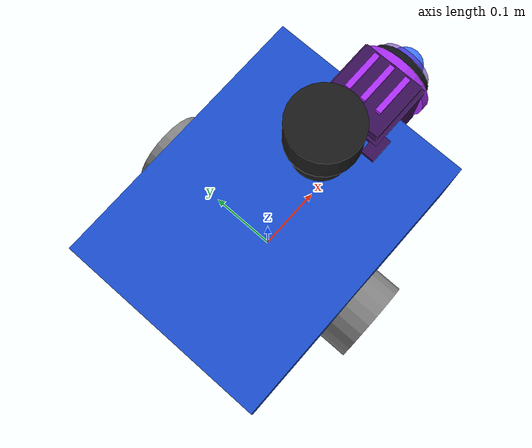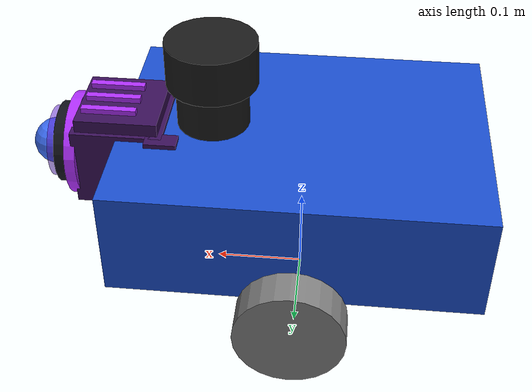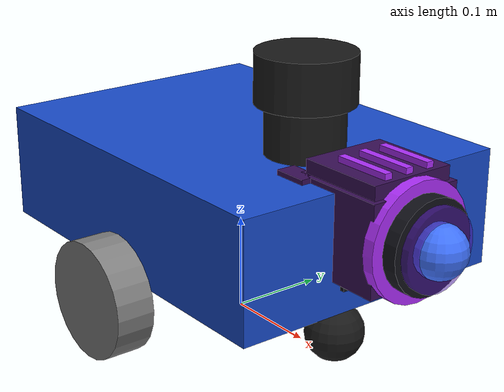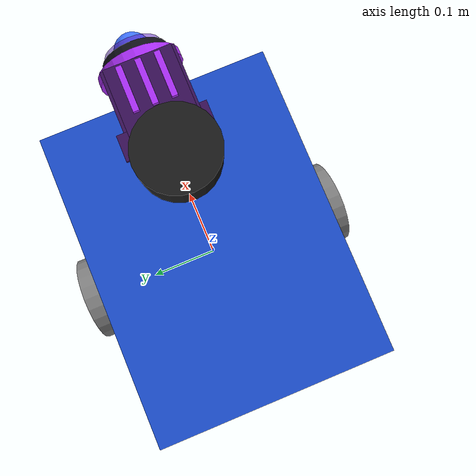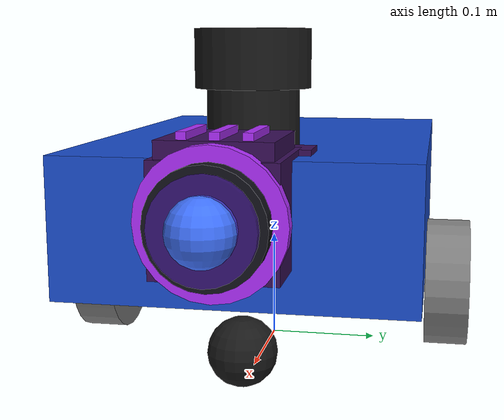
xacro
<?xml version="1.0"?>
<robot name="ros2_robot" xmlns:xacro="http://www.ros.org/wiki/xacro">

  <!-- ===================== 尺寸 / 质量参数 ===================== -->
  <xacro:property name="PI" value="3.14159265359"/>
  <xacro:property name="base_length" value="0.40"/>   <!-- 车长(x) -->
  <xacro:property name="base_width"  value="0.30"/>   <!-- 车宽(y) -->
  <xacro:property name="base_height" value="0.12"/>   <!-- 车高(z) -->
  <xacro:property name="base_mass"   value="4.0"/>
  <!-- 底盘中心离地高度：高于驱动轮半径，保证驱动轮着地、底盘不拖地 -->
  <xacro:property name="base_center_z" value="0.14"/>

  <xacro:property name="wheel_radius"    value="0.06"/>
  <xacro:property name="wheel_width"     value="0.04"/>
  <xacro:property name="wheel_offset_y"  value="0.17"/>   <!-- 两轮半间距 -> 轮距 0.34 -->
  <xacro:property name="wheel_offset_z"  value="0.06"/>
  <xacro:property name="wheel_mass"      value="0.5"/>

  <xacro:property name="caster_radius" value="0.03"/>
  <xacro:property name="caster_mass"   value="0.2"/>

  <xacro:property name="laser_mass" value="0.15"/>

  <material name="grey">   <color rgba="0.5 0.5 0.5 1.0"/></material>
  <material name="dark">   <color rgba="0.1 0.1 0.1 1.0"/></material>
  <material name="blue">   <color rgba="0.1 0.3 0.8 1.0"/></material>
  <material name="red">    <color rgba="0.8 0.1 0.1 1.0"/></material>

  <!-- 科幻摄像头配色 -->
  <material name="purple_metal"><color rgba="0.22 0.06 0.34 1.0"/></material>
  <material name="purple_glow"> <color rgba="0.68 0.18 0.98 1.0"/></material>
  <material name="dark_metal">  <color rgba="0.07 0.07 0.10 1.0"/></material>
  <material name="lens_glass">  <color rgba="0.36 0.12 0.78 0.55"/></material>
  <material name="blue_glow">   <color rgba="0.25 0.45 1.0 1.0"/></material>

  <!-- ===================== 惯性矩阵宏 ===================== -->
  <xacro:macro name="box_inertia" params="m x y z">
    <inertial>
      <mass value="${m}"/>
      <inertia
        ixx="${m*(y*y+z*z)/12.0}" ixy="0.0" ixz="0.0"
        iyy="${m*(x*x+z*z)/12.0}" iyz="0.0"
        izz="${m*(x*x+y*y)/12.0}"/>
    </inertial>
  </xacro:macro>

  <xacro:macro name="cylinder_inertia" params="m r h">
    <inertial>
      <mass value="${m}"/>
      <inertia
        ixx="${m*(3.0*r*r+h*h)/12.0}" ixy="0.0" ixz="0.0"
        iyy="${m*(3.0*r*r+h*h)/12.0}" iyz="0.0"
        izz="${m*r*r/2.0}"/>
    </inertial>
  </xacro:macro>

  <xacro:macro name="sphere_inertia" params="m r">
    <inertial>
      <mass value="${m}"/>
      <inertia
        ixx="${2.0*m*r*r/5.0}" ixy="0.0" ixz="0.0"
        iyy="${2.0*m*r*r/5.0}" iyz="0.0"
        izz="${2.0*m*r*r/5.0}"/>
    </inertial>
  </xacro:macro>

  <!-- ===================== base_link 底盘 ===================== -->
  <link name="base_link">
    <visual>
      <origin xyz="0 0 ${base_center_z}" rpy="0 0 0"/>
      <geometry><box size="${base_length} ${base_width} ${base_height}"/></geometry>
      <material name="blue"/>
    </visual>
    <collision>
      <origin xyz="0 0 ${base_center_z}" rpy="0 0 0"/>
      <geometry><box size="${base_length} ${base_width} ${base_height}"/></geometry>
    </collision>
    <xacro:box_inertia m="${base_mass}" x="${base_length}" y="${base_width}" z="${base_height}"/>
  </link>

  <!-- 雷达安装座（装饰） -->
  <link name="laser_mount_link">
    <visual>
      <origin xyz="0 0 0.03" rpy="0 0 0"/>
      <geometry><cylinder radius="0.04" length="0.06"/></geometry>
      <material name="dark"/>
    </visual>
    <collision>
      <origin xyz="0 0 0.03" rpy="0 0 0"/>
      <geometry><cylinder radius="0.04" length="0.06"/></geometry>
    </collision>
    <xacro:cylinder_inertia m="0.05" r="0.04" h="0.06"/>
  </link>

  <joint name="laser_mount_joint" type="fixed">
    <parent link="base_link"/>
    <child link="laser_mount_link"/>
    <origin xyz="0.10 0 ${base_center_z + base_height/2.0}" rpy="0 0 0"/>
  </joint>

  <!-- 二维激光雷达 -->
  <link name="laser_link">
    <visual>
      <origin xyz="0 0 0" rpy="0 0 0"/>
      <geometry><cylinder radius="0.05" length="0.05"/></geometry>
      <material name="dark"/>
    </visual>
    <collision>
      <origin xyz="0 0 0" rpy="0 0 0"/>
      <geometry><cylinder radius="0.05" length="0.05"/></geometry>
    </collision>
    <xacro:cylinder_inertia m="${laser_mass}" r="0.05" h="0.05"/>
  </link>

  <joint name="laser_joint" type="fixed">
    <parent link="laser_mount_link"/>
    <child link="laser_link"/>
    <origin xyz="0 0 0.075" rpy="0 0 0"/>
  </joint>

  <!-- ===================== 前置科幻摄像头（紫色） =====================
       深紫色金属外壳 + 半透明紫蓝渐变玻璃镜头 + 环形灯带 + 细密机械结构；
       居中安装于车头前方（y=0），镜头朝 +x，水平 180° 超广角。
  -->
  <link name="camera_mount_link">
    <visual>
      <origin xyz="0 0 0" rpy="0 0 0"/>
      <geometry><box size="0.04 0.12 0.02"/></geometry>
      <material name="dark_metal"/>
    </visual>
    <visual>
      <origin xyz="0 0.05 0.03" rpy="0 0 0"/>
      <geometry><box size="0.035 0.02 0.05"/></geometry>
      <material name="purple_metal"/>
    </visual>
    <visual>
      <origin xyz="0 -0.05 0.03" rpy="0 0 0"/>
      <geometry><box size="0.035 0.02 0.05"/></geometry>
      <material name="purple_metal"/>
    </visual>
    <inertial>
      <mass value="0.05"/>
      <inertia ixx="0.00006" ixy="0" ixz="0" iyy="0.00006" iyz="0" izz="0.00006"/>
    </inertial>
  </link>

  <joint name="camera_mount_joint" type="fixed">
    <parent link="base_link"/>
    <child link="camera_mount_link"/>
    <origin xyz="0.15 0 0.15" rpy="0 0 0"/>
  </joint>

  <link name="camera_housing_link">
    <visual>
      <origin xyz="0 0 0" rpy="0 0 0"/>
      <geometry><box size="0.10 0.10 0.09"/></geometry>
      <material name="purple_metal"/>
    </visual>
    <visual>
      <origin xyz="0 0 0.052" rpy="0 0 0"/>
      <geometry><box size="0.09 0.09 0.014"/></geometry>
      <material name="purple_metal"/>
    </visual>
    <visual>
      <origin xyz="-0.02 0 -0.05" rpy="0 0 0"/>
      <geometry><box size="0.05 0.08 0.012"/></geometry>
      <material name="dark_metal"/>
    </visual>
    <visual>
      <origin xyz="0.01 0 0.062" rpy="0 0 0"/>
      <geometry><box size="0.06 0.008 0.006"/></geometry>
      <material name="purple_glow"/>
    </visual>
    <visual>
      <origin xyz="0.01 0.025 0.062" rpy="0 0 0"/>
      <geometry><box size="0.06 0.008 0.006"/></geometry>
      <material name="purple_glow"/>
    </visual>
    <visual>
      <origin xyz="0.01 -0.025 0.062" rpy="0 0 0"/>
      <geometry><box size="0.06 0.008 0.006"/></geometry>
      <material name="purple_glow"/>
    </visual>
    <inertial>
      <mass value="0.12"/>
      <inertia ixx="0.00014" ixy="0" ixz="0" iyy="0.00014" iyz="0" izz="0.0002"/>
    </inertial>
  </link>

  <joint name="camera_body_joint" type="fixed">
    <parent link="camera_mount_link"/>
    <child link="camera_housing_link"/>
    <origin xyz="0.05 0 0.01" rpy="0 0 0"/>
  </joint>

  <link name="camera_ring_link">
    <visual>
      <origin xyz="0 0 0" rpy="0 ${PI/2.0} 0"/>
      <geometry><cylinder radius="0.058" length="0.012"/></geometry>
      <material name="purple_glow"/>
    </visual>
    <inertial>
      <mass value="0.02"/>
      <inertia ixx="0.00002" ixy="0" ixz="0" iyy="0.00002" iyz="0" izz="0.00003"/>
    </inertial>
  </link>

  <joint name="camera_ring_joint" type="fixed">
    <parent link="camera_housing_link"/>
    <child link="camera_ring_link"/>
    <origin xyz="0.052 0 0" rpy="0 0 0"/>
  </joint>

  <link name="camera_barrel_link">
    <visual>
      <origin xyz="0 0 0" rpy="0 ${PI/2.0} 0"/>
      <geometry><cylinder radius="0.046" length="0.03"/></geometry>
      <material name="dark_metal"/>
    </visual>
    <visual>
      <origin xyz="-0.015 0 0" rpy="0 ${PI/2.0} 0"/>
      <geometry><cylinder radius="0.05" length="0.006"/></geometry>
      <material name="purple_metal"/>
    </visual>
    <visual>
      <origin xyz="-0.025 0 0" rpy="0 ${PI/2.0} 0"/>
      <geometry><cylinder radius="0.05" length="0.006"/></geometry>
      <material name="purple_metal"/>
    </visual>
    <inertial>
      <mass value="0.06"/>
      <inertia ixx="0.00003" ixy="0" ixz="0" iyy="0.00003" iyz="0" izz="0.00004"/>
    </inertial>
  </link>

  <joint name="camera_barrel_joint" type="fixed">
    <parent link="camera_housing_link"/>
    <child link="camera_barrel_link"/>
    <origin xyz="0.058 0 0" rpy="0 0 0"/>
  </joint>

  <link name="camera_lens_link">
    <visual>
      <origin xyz="0 0 0" rpy="0 ${PI/2.0} 0"/>
      <geometry><cylinder radius="0.04" length="0.008"/></geometry>
      <material name="lens_glass"/>
    </visual>
    <inertial>
      <mass value="0.02"/>
      <inertia ixx="0.00001" ixy="0" ixz="0" iyy="0.00001" iyz="0" izz="0.00002"/>
    </inertial>
  </link>

  <joint name="camera_lens_joint" type="fixed">
    <parent link="camera_barrel_link"/>
    <child link="camera_lens_link"/>
    <origin xyz="0.02 0 0" rpy="0 0 0"/>
  </joint>

  <link name="camera_lens_core_link">
    <visual>
      <origin xyz="0 0 0" rpy="0 0 0"/>
      <geometry><sphere radius="0.026"/></geometry>
      <material name="blue_glow"/>
    </visual>
    <inertial>
      <mass value="0.01"/>
      <inertia ixx="0.000005" ixy="0" ixz="0" iyy="0.000005" iyz="0" izz="0.000005"/>
    </inertial>
  </link>

  <joint name="camera_lens_core_joint" type="fixed">
    <parent link="camera_lens_link"/>
    <child link="camera_lens_core_link"/>
    <origin xyz="0.003 0 0" rpy="0 0 0"/>
  </joint>

  <link name="camera_optical_frame"/>
  <joint name="camera_optical_joint" type="fixed">
    <parent link="camera_lens_link"/>
    <child link="camera_optical_frame"/>
    <origin xyz="0 0 0" rpy="-${PI/2.0} 0 -${PI/2.0}"/>
  </joint>

  <!-- ===================== 差速驱动轮 ===================== -->
  <xacro:macro name="wheel" params="prefix y">
    <link name="${prefix}_wheel_link">
      <visual>
        <origin xyz="0 0 0" rpy="${PI/2.0} 0 0"/>
        <geometry><cylinder radius="${wheel_radius}" length="${wheel_width}"/></geometry>
        <material name="grey"/>
      </visual>
      <collision>
        <origin xyz="0 0 0" rpy="${PI/2.0} 0 0"/>
        <geometry><cylinder radius="${wheel_radius}" length="${wheel_width}"/></geometry>
      </collision>
      <xacro:cylinder_inertia m="${wheel_mass}" r="${wheel_radius}" h="${wheel_width}"/>
    </link>

    <joint name="${prefix}_wheel_joint" type="continuous">
      <parent link="base_link"/>
      <child link="${prefix}_wheel_link"/>
      <origin xyz="0 ${y} ${wheel_offset_z}" rpy="0 0 0"/>
      <axis xyz="0 1 0"/>
      <dynamics damping="0.05" friction="0.0"/>
    </joint>
  </xacro:macro>

  <xacro:wheel prefix="left"  y="${ wheel_offset_y}"/>
  <xacro:wheel prefix="right" y="${-wheel_offset_y}"/>

  <!-- ===================== 万向支撑轮 ===================== -->
  <link name="caster_link">
    <visual>
      <origin xyz="0 0 0" rpy="0 0 0"/>
      <geometry><sphere radius="${caster_radius}"/></geometry>
      <material name="dark"/>
    </visual>
    <collision>
      <origin xyz="0 0 0" rpy="0 0 0"/>
      <geometry><sphere radius="${caster_radius}"/></geometry>
    </collision>
    <xacro:sphere_inertia m="${caster_mass}" r="${caster_radius}"/>
  </link>

  <joint name="caster_joint" type="fixed">
    <parent link="base_link"/>
    <child link="caster_link"/>
    <origin xyz="-0.15 0 ${caster_radius}" rpy="0 0 0"/>
  </joint>

  <!-- 前万向支撑轮：抵消前置摄像头造成的重心前移，保持车身水平、雷达扫描面正确 -->
  <link name="caster_front_link">
    <visual>
      <origin xyz="0 0 0" rpy="0 0 0"/>
      <geometry><sphere radius="${caster_radius}"/></geometry>
      <material name="dark"/>
    </visual>
    <collision>
      <origin xyz="0 0 0" rpy="0 0 0"/>
      <geometry><sphere radius="${caster_radius}"/></geometry>
    </collision>
    <xacro:sphere_inertia m="${caster_mass}" r="${caster_radius}"/>
  </link>

  <joint name="caster_front_joint" type="fixed">
    <parent link="base_link"/>
    <child link="caster_front_link"/>
    <origin xyz="0.15 0 ${caster_radius}" rpy="0 0 0"/>
  </joint>

  <!-- ===================== Gazebo 物理属性 ===================== -->
  <gazebo reference="base_link">
    <material>Gazebo/Blue</material>
    <mu1>0.2</mu1>
    <mu2>0.2</mu2>
  </gazebo>

  <gazebo reference="left_wheel_link">
    <material>Gazebo/Black</material>
    <mu1>1.0</mu1>
    <mu2>1.0</mu2>
    <kp>1000000.0</kp>
    <kd>1.0</kd>
  </gazebo>

  <gazebo reference="right_wheel_link">
    <material>Gazebo/Black</material>
    <mu1>1.0</mu1>
    <mu2>1.0</mu2>
    <kp>1000000.0</kp>
    <kd>1.0</kd>
  </gazebo>

  <gazebo reference="caster_link">
    <material>Gazebo/Black</material>
    <mu1>0.01</mu1>
    <mu2>0.01</mu2>
    <kp>1000000.0</kp>
    <kd>1.0</kd>
  </gazebo>

  <gazebo reference="caster_front_link">
    <material>Gazebo/Black</material>
    <mu1>0.01</mu1>
    <mu2>0.01</mu2>
    <kp>1000000.0</kp>
    <kd>1.0</kd>
  </gazebo>

  <gazebo reference="laser_link">
    <material>Gazebo/Black</material>
  </gazebo>

  <!-- 摄像头各部件 Gazebo 材质（紫色科幻风：金属外壳/发光灯带/半透明玻璃） -->
  <gazebo reference="camera_mount_link">
    <material>Gazebo/DarkGrey</material>
  </gazebo>
  <gazebo reference="camera_housing_link">
    <material>Gazebo/Indigo</material>
  </gazebo>
  <gazebo reference="camera_ring_link">
    <material>Gazebo/PurpleGlow</material>
  </gazebo>
  <gazebo reference="camera_barrel_link">
    <material>Gazebo/DarkGrey</material>
  </gazebo>
  <gazebo reference="camera_lens_link">
    <material>Gazebo/DarkMagentaTransparent</material>
  </gazebo>
  <gazebo reference="camera_lens_core_link">
    <material>Gazebo/BlueGlow</material>
  </gazebo>

  <!-- ===================== 前置摄像头传感器（水平 180° 超广角） ===================== -->
  <gazebo reference="camera_lens_link">
    <sensor name="front_camera" type="camera">
      <always_on>true</always_on>
      <visualize>true</visualize>
      <update_rate>30</update_rate>
      <pose>0 0 0 0 0 0</pose>
      <camera name="front_camera">
        <horizontal_fov>3.1415</horizontal_fov>
        <image>
          <width>640</width>
          <height>480</height>
          <format>R8G8B8</format>
        </image>
        <clip>
          <near>0.05</near>
          <far>100.0</far>
        </clip>
        <noise>
          <type>gaussian</type>
          <mean>0.0</mean>
          <stddev>0.007</stddev>
        </noise>
      </camera>
      <plugin name="camera_controller" filename="libgazebo_ros_camera.so">
        <ros>
          <namespace>/</namespace>
        </ros>
        <camera_name>camera</camera_name>
        <frame_name>camera_optical_frame</frame_name>
        <hack_baseline>0.07</hack_baseline>
      </plugin>
    </sensor>
  </gazebo>

  <!-- ===================== 差速驱动控制器插件 ===================== -->
  <gazebo>
    <plugin name="diff_drive_controller" filename="libgazebo_ros_diff_drive.so">
      <ros>
        <namespace>/</namespace>
        <remapping>cmd_vel:=cmd_vel</remapping>
        <remapping>odom:=odom</remapping>
      </ros>

      <update_rate>50</update_rate>

      <!-- 关节与轮参数 -->
      <left_joint>left_wheel_joint</left_joint>
      <right_joint>right_wheel_joint</right_joint>
      <wheel_separation>${2.0*wheel_offset_y}</wheel_separation>
      <wheel_diameter>${2.0*wheel_radius}</wheel_diameter>

      <max_wheel_torque>20.0</max_wheel_torque>
      <max_wheel_acceleration>2.0</max_wheel_acceleration>

      <!-- 话题与坐标系（TF: odom -> base_link） -->
      <command_topic>cmd_vel</command_topic>
      <odometry_topic>odom</odometry_topic>
      <odometry_frame>odom</odometry_frame>
      <robot_base_frame>base_link</robot_base_frame>

      <publish_odom>true</publish_odom>
      <publish_odom_tf>true</publish_odom_tf>
      <publish_wheel_tf>false</publish_wheel_tf>
    </plugin>

    <!-- 发布轮子关节状态，供 robot_state_publisher 计算轮子 TF -->
    <plugin name="joint_state_publisher" filename="libgazebo_ros_joint_state_publisher.so">
      <ros>
        <namespace>/</namespace>
        <remapping>~/out:=joint_states</remapping>
      </ros>
      <update_rate>30</update_rate>
      <joint_name>left_wheel_joint</joint_name>
      <joint_name>right_wheel_joint</joint_name>
    </plugin>
  </gazebo>

  <!-- ===================== 二维激光雷达插件 ===================== -->
  <gazebo reference="laser_link">
    <sensor name="laser_sensor" type="ray">
      <always_on>true</always_on>
      <visualize>true</visualize>
      <update_rate>10</update_rate>
      <pose>0 0 0 0 0 0</pose>
      <ray>
        <scan>
          <horizontal>
            <samples>360</samples>
            <resolution>1.0</resolution>
            <min_angle>-3.14159265</min_angle>
            <max_angle>3.14159265</max_angle>
          </horizontal>
        </scan>
        <range>
          <min>0.12</min>
          <max>8.0</max>
          <resolution>0.01</resolution>
        </range>
        <noise>
          <type>gaussian</type>
          <mean>0.0</mean>
          <stddev>0.01</stddev>
        </noise>
      </ray>
      <plugin name="laser_controller" filename="libgazebo_ros_ray_sensor.so">
        <ros>
          <namespace>/</namespace>
          <remapping>~/out:=scan</remapping>
        </ros>
        <output_type>sensor_msgs/LaserScan</output_type>
        <frame_name>laser_link</frame_name>
      </plugin>
    </sensor>
  </gazebo>

</robot>
